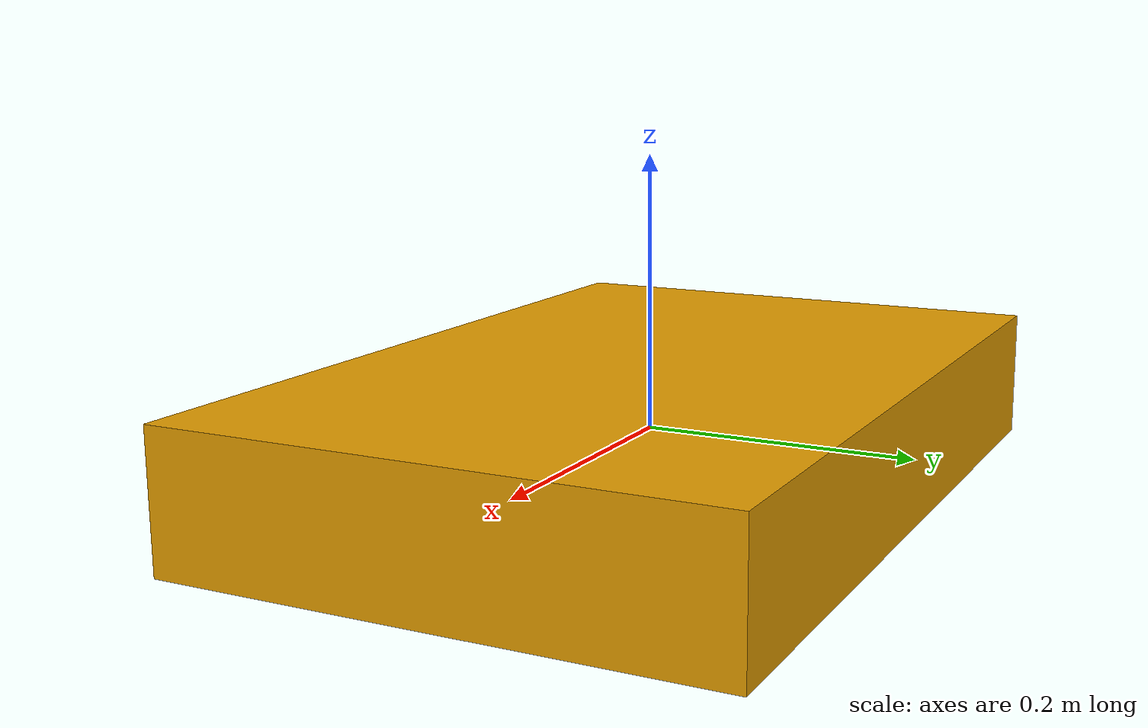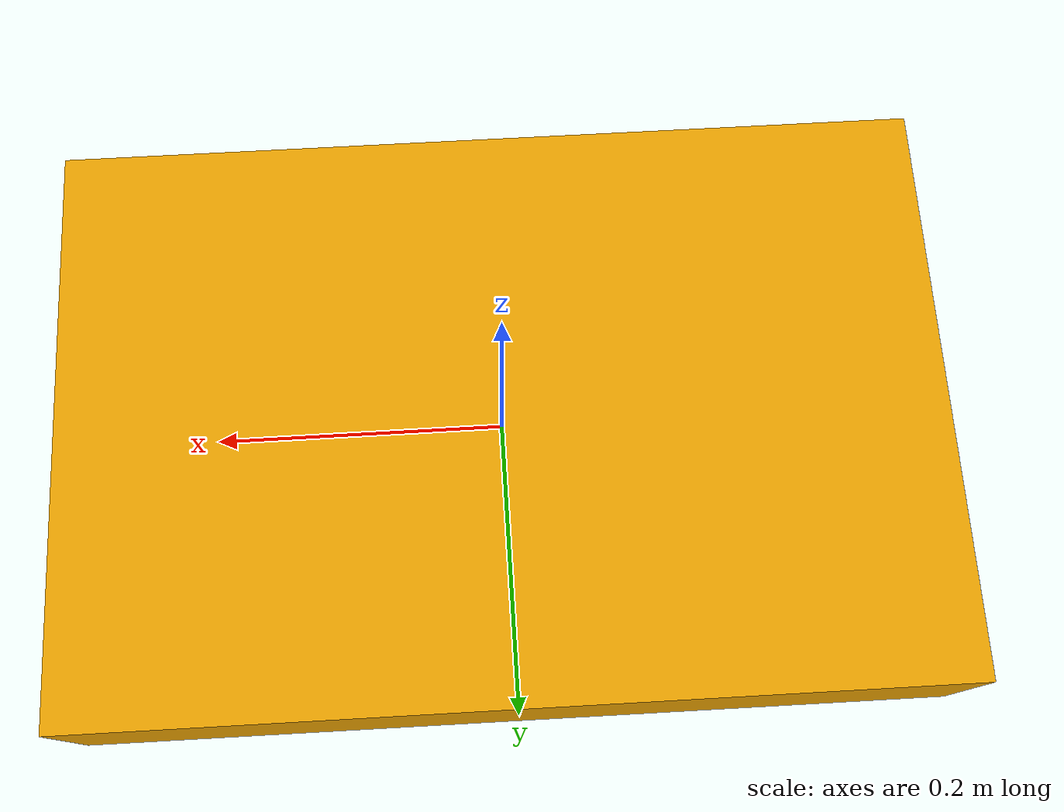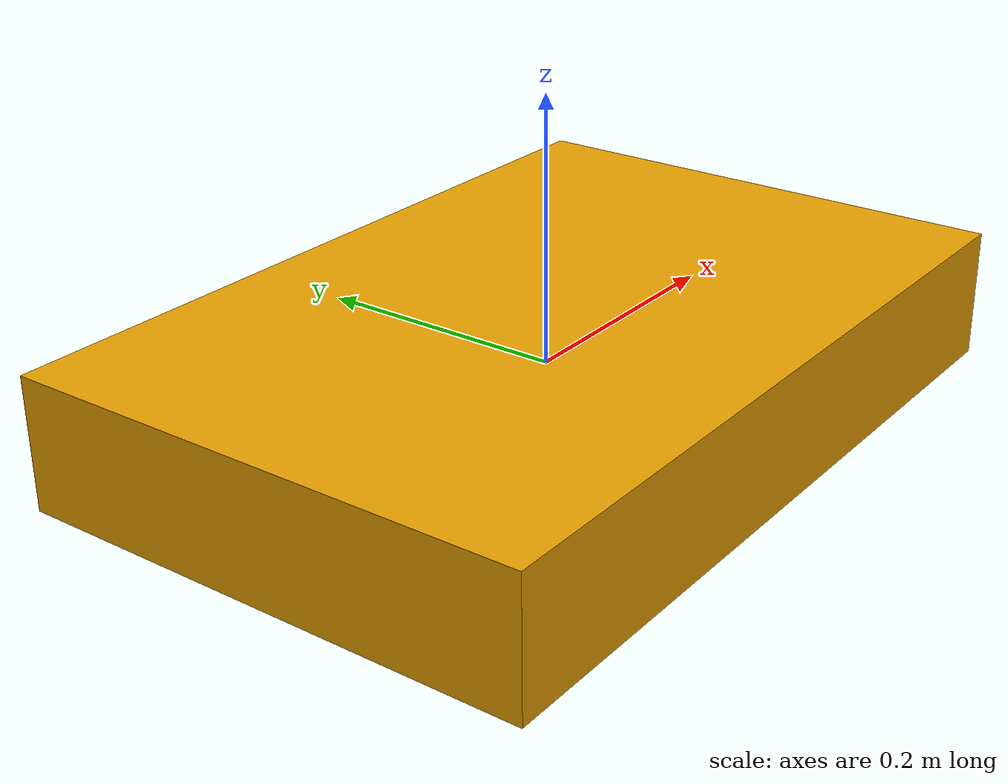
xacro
<?xml version="1.0"?>
<robot name="smartbot" xmlns:xacro="http://ros.org/wiki/xacro">
  <!-- Base -->
  <link name="base_link">
    <visual><geometry><box size="0.6 0.4 0.1"/></geometry></visual>
    <collision><geometry><box size="0.6 0.4 0.1"/></geometry></collision>
    <inertial><mass value="20"/><inertia ixx="1" ixy="0" ixz="0" iyy="1" iyz="0" izz="1"/></inertial>
  </link>

  <!-- Differential wheels (simplified) -->
  <link name="left_wheel_link"/><link name="right_wheel_link"/>
  <joint name="left_wheel_joint" type="continuous"><parent link="base_link"/><child link="left_wheel_link"/></joint>
  <joint name="right_wheel_joint" type="continuous"><parent link="base_link"/><child link="right_wheel_link"/></joint>

  <!-- Camera -->
  <link name="camera_link">
    <visual><geometry><box size="0.06 0.06 0.06"/></geometry></visual>
  </link>
  <joint name="camera_joint" type="fixed"><parent link="base_link"/><child link="camera_link"><origin xyz="0.25 0 0.3" rpy="0 0 0"/></child></joint>

  <!-- Arm base -->
  <link name="arm_base_link"/>
  <joint name="arm_base_joint" type="fixed"><parent link="base_link"/><child link="arm_base_link"><origin xyz="0.0 0.0 0.15" rpy="0 0 0"/></child></joint>

  <!-- Simple 4-DOF chain -->
  <link name="link1"/><joint name="joint1" type="revolute"><parent link="arm_base_link"/><child link="link1"><limit lower="-1.57" upper="1.57" effort="50" velocity="1.0"/><origin xyz="0 0 0.05"/></child></joint>
  <link name="link2"/><joint name="joint2" type="revolute"><parent link="link1"/><child link="link2"><limit lower="-1.5" upper="1.5" effort="40" velocity="1.0"/></child></joint>
  <link name="link3"/><joint name="joint3" type="revolute"><parent link="link2"/><child link="link3"><limit lower="-1.5" upper="1.5"/></child></joint>
  <link name="ee_link"/>
  <joint name="joint4" type="revolute"><parent link="link3"/><child link="ee_link"><limit lower="-3.14" upper="3.14"/></child></joint>

  <!-- End effector / gripper (visual only) -->
  <link name="gripper_link">
    <visual><geometry><box size="0.08 0.08 0.02"/></geometry></visual>
  </link>
  <joint name="gripper_joint" type="fixed"><parent link="ee_link"/><child link="gripper_link"/></joint>
</robot>
